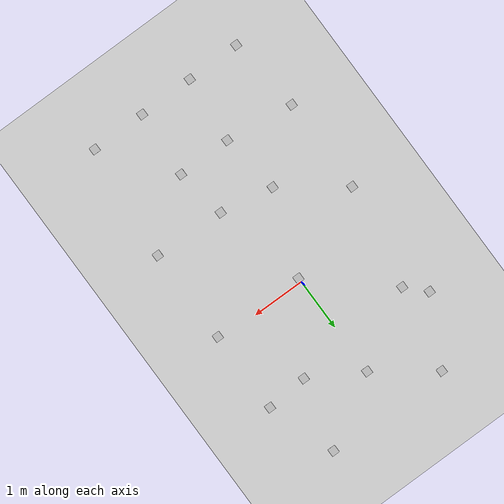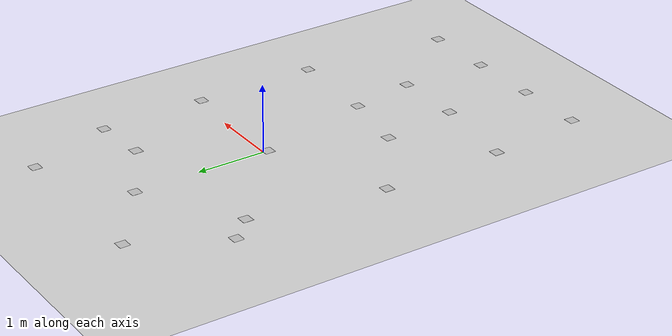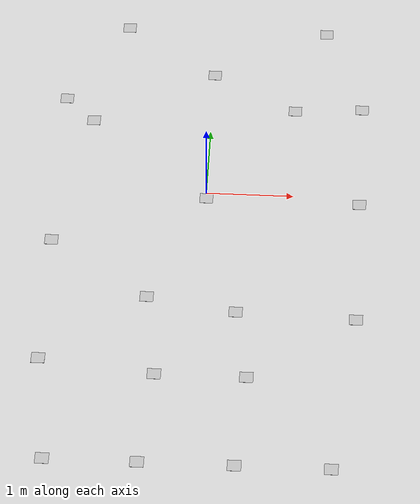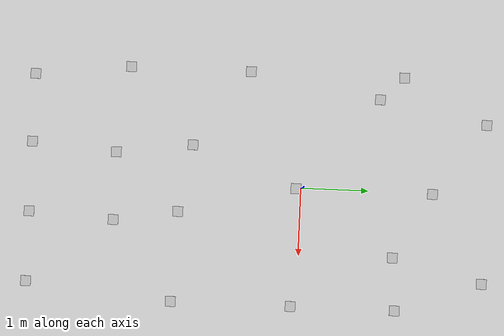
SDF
<?xml version="1.0" ?>
<sdf version="1.4">
  <world name="default">
    <include>
      <uri>model://ground_plane</uri>
	  <pose frame=''>0 0 -0.10 0 0 0 </pose>
    </include>
    <include>
      <uri>model://sun</uri>
    </include>

    <model name='tagcode1'>
	<static>1</static>
	<link name='link'>
		<visual name='visual'>
		<cast_shadows>1</cast_shadows>
		<geometry>
		<box>
		<size> 0.15 0.15 0.001</size>
		</box>
		</geometry>
		<material>
		<script>
			<uri>model://tagcode/materials/scripts</uri>
			<uri>model://tagcode/materials/textures</uri>
			<name>tagcode1</name>
		</script>
		</material>
		</visual>
		<self_collide>0</self_collide>
		<kinematic>0</kinematic>
	</link>
	<pose frame=''>-1.54889 -4.02215 0 0 0 0 </pose>
</model>

<model name='tagcode2'>
	<static>1</static>
	<link name='link'>
		<visual name='visual'>
		<cast_shadows>1</cast_shadows>
		<geometry>
		<box>
		<size> 0.15 0.15 0.001</size>
		</box>
		</geometry>
		<material>
		<script>
			<uri>model://tagcode/materials/scripts</uri>
			<uri>model://tagcode/materials/textures</uri>
			<name>tagcode2</name>
		</script>
		</material>
		</visual>
		<self_collide>0</self_collide>
		<kinematic>0</kinematic>
	</link>
	<pose frame=''>-1.71128 -2.59959 0 0 0 0 </pose>
</model>

<model name='tagcode3'>
	<static>1</static>
	<link name='link'>
		<visual name='visual'>
		<cast_shadows>1</cast_shadows>
		<geometry>
		<box>
		<size> 0.15 0.15 0.001</size>
		</box>
		</geometry>
		<material>
		<script>
			<uri>model://tagcode/materials/scripts</uri>
			<uri>model://tagcode/materials/textures</uri>
			<name>tagcode3</name>
		</script>
		</material>
		</visual>
		<self_collide>0</self_collide>
		<kinematic>0</kinematic>
	</link>
	<pose frame=''>-1.71128 -0.81162 0 0 0 0 </pose>
</model>

<model name='tagcode4'>
	<static>1</static>
	<link name='link'>
		<visual name='visual'>
		<cast_shadows>1</cast_shadows>
		<geometry>
		<box>
		<size> 0.15 0.15 0.001</size>
		</box>
		</geometry>
		<material>
		<script>
			<uri>model://tagcode/materials/scripts</uri>
			<uri>model://tagcode/materials/textures</uri>
			<name>tagcode4</name>
		</script>
		</material>
		</visual>
		<self_collide>0</self_collide>
		<kinematic>0</kinematic>
	</link>
	<pose frame=''>-1.71128 1.47854 0 0 0 0 </pose>
</model>

<model name='tagcode5'>
	<static>1</static>
	<link name='link'>
		<visual name='visual'>
		<cast_shadows>1</cast_shadows>
		<geometry>
		<box>
		<size> 0.15 0.15 0.001</size>
		</box>
		</geometry>
		<material>
		<script>
			<uri>model://tagcode/materials/scripts</uri>
			<uri>model://tagcode/materials/textures</uri>
			<name>tagcode5</name>
		</script>
		</material>
		</visual>
		<self_collide>0</self_collide>
		<kinematic>0</kinematic>
	</link>
	<pose frame=''>-1.05585 2.72776 0 0 0 0 </pose>
</model>

<model name='tagcode6'>
	<static>1</static>
	<link name='link'>
		<visual name='visual'>
		<cast_shadows>1</cast_shadows>
		<geometry>
		<box>
		<size> 0.15 0.15 0.001</size>
		</box>
		</geometry>
		<material>
		<script>
			<uri>model://tagcode/materials/scripts</uri>
			<uri>model://tagcode/materials/textures</uri>
			<name>tagcode6</name>
		</script>
		</material>
		</visual>
		<self_collide>0</self_collide>
		<kinematic>0</kinematic>
	</link>
	<pose frame=''>-1.3707 1.12923 0 0 0 0 </pose>
</model>

<model name='tagcode7'>
	<static>1</static>
	<link name='link'>
		<visual name='visual'>
		<cast_shadows>1</cast_shadows>
		<geometry>
		<box>
		<size> 0.15 0.15 0.001</size>
		</box>
		</geometry>
		<material>
		<script>
			<uri>model://tagcode/materials/scripts</uri>
			<uri>model://tagcode/materials/textures</uri>
			<name>tagcode7</name>
		</script>
		</material>
		</visual>
		<self_collide>0</self_collide>
		<kinematic>0</kinematic>
	</link>
	<pose frame=''>-0.53511 -4.02215 0 0 0 0 </pose>
</model>

<model name='tagcode8'>
	<static>1</static>
	<link name='link'>
		<visual name='visual'>
		<cast_shadows>1</cast_shadows>
		<geometry>
		<box>
		<size> 0.15 0.15 0.001</size>
		</box>
		</geometry>
		<material>
		<script>
			<uri>model://tagcode/materials/scripts</uri>
			<uri>model://tagcode/materials/textures</uri>
			<name>tagcode8</name>
		</script>
		</material>
		</visual>
		<self_collide>0</self_collide>
		<kinematic>0</kinematic>
	</link>
	<pose frame=''>-0.42941 -2.76879 0 0 0 0 </pose>
</model>

<model name='tagcode9'>
	<static>1</static>
	<link name='link'>
		<visual name='visual'>
		<cast_shadows>1</cast_shadows>
		<geometry>
		<box>
		<size> 0.15 0.15 0.001</size>
		</box>
		</geometry>
		<material>
		<script>
			<uri>model://tagcode/materials/scripts</uri>
			<uri>model://tagcode/materials/textures</uri>
			<name>tagcode9</name>
		</script>
		</material>
		</visual>
		<self_collide>0</self_collide>
		<kinematic>0</kinematic>
	</link>
	<pose frame=''>-0.58098 -1.63212 0 0 0 0 </pose>
</model>

<model name='tagcode10'>
	<static>1</static>
	<link name='link'>
		<visual name='visual'>
		<cast_shadows>1</cast_shadows>
		<geometry>
		<box>
		<size> 0.15 0.15 0.001</size>
		</box>
		</geometry>
		<material>
		<script>
			<uri>model://tagcode/materials/scripts</uri>
			<uri>model://tagcode/materials/textures</uri>
			<name>tagcode10</name>
		</script>
		</material>
		</visual>
		<self_collide>0</self_collide>
		<kinematic>0</kinematic>
	</link>
	<pose frame=''>0.0049 -0.0752 0 0 0 0 </pose>
</model>

<model name='tagcode11'>
	<static>1</static>
	<link name='link'>
		<visual name='visual'>
		<cast_shadows>1</cast_shadows>
		<geometry>
		<box>
		<size> 0.15 0.15 0.001</size>
		</box>
		</geometry>
		<material>
		<script>
			<uri>model://tagcode/materials/scripts</uri>
			<uri>model://tagcode/materials/textures</uri>
			<name>tagcode11</name>
		</script>
		</material>
		</visual>
		<self_collide>0</self_collide>
		<kinematic>0</kinematic>
	</link>
	<pose frame=''>0.0049 1.95597 0 0 0 0 </pose>
</model>

<model name='tagcode12'>
	<static>1</static>
	<link name='link'>
		<visual name='visual'>
		<cast_shadows>1</cast_shadows>
		<geometry>
		<box>
		<size> 0.15 0.15 0.001</size>
		</box>
		</geometry>
		<material>
		<script>
			<uri>model://tagcode/materials/scripts</uri>
			<uri>model://tagcode/materials/textures</uri>
			<name>tagcode12</name>
		</script>
		</material>
		</visual>
		<self_collide>0</self_collide>
		<kinematic>0</kinematic>
	</link>
	<pose frame=''>0.50305 -4.02215 0 0 0 0 </pose>
</model>

<model name='tagcode13'>
	<static>1</static>
	<link name='link'>
		<visual name='visual'>
		<cast_shadows>1</cast_shadows>
		<geometry>
		<box>
		<size> 0.15 0.15 0.001</size>
		</box>
		</geometry>
		<material>
		<script>
			<uri>model://tagcode/materials/scripts</uri>
			<uri>model://tagcode/materials/textures</uri>
			<name>tagcode13</name>
		</script>
		</material>
		</visual>
		<self_collide>0</self_collide>
		<kinematic>0</kinematic>
	</link>
	<pose frame=''>0.57857 -2.76879 0 0 0 0 </pose>
</model>

<model name='tagcode14'>
	<static>1</static>
	<link name='link'>
		<visual name='visual'>
		<cast_shadows>1</cast_shadows>
		<geometry>
		<box>
		<size> 0.15 0.15 0.001</size>
		</box>
		</geometry>
		<material>
		<script>
			<uri>model://tagcode/materials/scripts</uri>
			<uri>model://tagcode/materials/textures</uri>
			<name>tagcode14</name>
		</script>
		</material>
		</visual>
		<self_collide>0</self_collide>
		<kinematic>0</kinematic>
	</link>
	<pose frame=''>0.41839 -1.81437 0 0 0 0 </pose>
</model>

<model name='tagcode15'>
	<static>1</static>
	<link name='link'>
		<visual name='visual'>
		<cast_shadows>1</cast_shadows>
		<geometry>
		<box>
		<size> 0.15 0.15 0.001</size>
		</box>
		</geometry>
		<material>
		<script>
			<uri>model://tagcode/materials/scripts</uri>
			<uri>model://tagcode/materials/textures</uri>
			<name>tagcode15</name>
		</script>
		</material>
		</visual>
		<self_collide>0</self_collide>
		<kinematic>0</kinematic>
	</link>
	<pose frame=''>0.97289 1.39488 0 0 0 0 </pose>
</model>

<model name='tagcode16'>
	<static>1</static>
	<link name='link'>
		<visual name='visual'>
		<cast_shadows>1</cast_shadows>
		<geometry>
		<box>
		<size> 0.15 0.15 0.001</size>
		</box>
		</geometry>
		<material>
		<script>
			<uri>model://tagcode/materials/scripts</uri>
			<uri>model://tagcode/materials/textures</uri>
			<name>tagcode16</name>
		</script>
		</material>
		</visual>
		<self_collide>0</self_collide>
		<kinematic>0</kinematic>
	</link>
	<pose frame=''>1.30683 2.72776 0 0 0 0 </pose>
</model>

<model name='tagcode17'>
	<static>1</static>
	<link name='link'>
		<visual name='visual'>
		<cast_shadows>1</cast_shadows>
		<geometry>
		<box>
		<size> 0.15 0.15 0.001</size>
		</box>
		</geometry>
		<material>
		<script>
			<uri>model://tagcode/materials/scripts</uri>
			<uri>model://tagcode/materials/textures</uri>
			<name>tagcode17</name>
		</script>
		</material>
		</visual>
		<self_collide>0</self_collide>
		<kinematic>0</kinematic>
	</link>
	<pose frame=''>1.53731 -4.02215 0 0 0 0 </pose>
</model>

<model name='tagcode18'>
	<static>1</static>
	<link name='link'>
		<visual name='visual'>
		<cast_shadows>1</cast_shadows>
		<geometry>
		<box>
		<size> 0.15 0.15 0.001</size>
		</box>
		</geometry>
		<material>
		<script>
			<uri>model://tagcode/materials/scripts</uri>
			<uri>model://tagcode/materials/textures</uri>
			<name>tagcode18</name>
		</script>
		</material>
		</visual>
		<self_collide>0</self_collide>
		<kinematic>0</kinematic>
	</link>
	<pose frame=''>1.75325 -1.86586 0 0 0 0 </pose>
</model>

<model name='tagcode19'>
	<static>1</static>
	<link name='link'>
		<visual name='visual'>
		<cast_shadows>1</cast_shadows>
		<geometry>
		<box>
		<size> 0.15 0.15 0.001</size>
		</box>
		</geometry>
		<material>
		<script>
			<uri>model://tagcode/materials/scripts</uri>
			<uri>model://tagcode/materials/textures</uri>
			<name>tagcode19</name>
		</script>
		</material>
		</visual>
		<self_collide>0</self_collide>
		<kinematic>0</kinematic>
	</link>
	<pose frame=''>1.75325 -0.09029 0 0 0 0 </pose>
</model>

<model name='tagcode20'>
	<static>1</static>
	<link name='link'>
		<visual name='visual'>
		<cast_shadows>1</cast_shadows>
		<geometry>
		<box>
		<size> 0.15 0.15 0.001</size>
		</box>
		</geometry>
		<material>
		<script>
			<uri>model://tagcode/materials/scripts</uri>
			<uri>model://tagcode/materials/textures</uri>
			<name>tagcode20</name>
		</script>
		</material>
		</visual>
		<self_collide>0</self_collide>
		<kinematic>0</kinematic>
	</link>
	<pose frame=''>1.75325 1.45287 0 0 0 0 </pose>
</model>

  </world>
</sdf>
